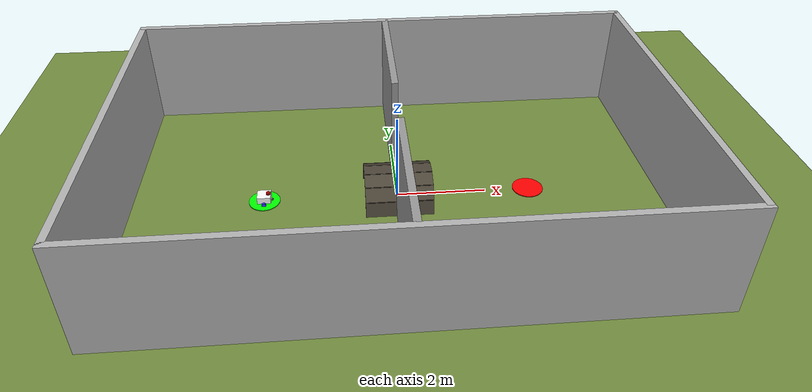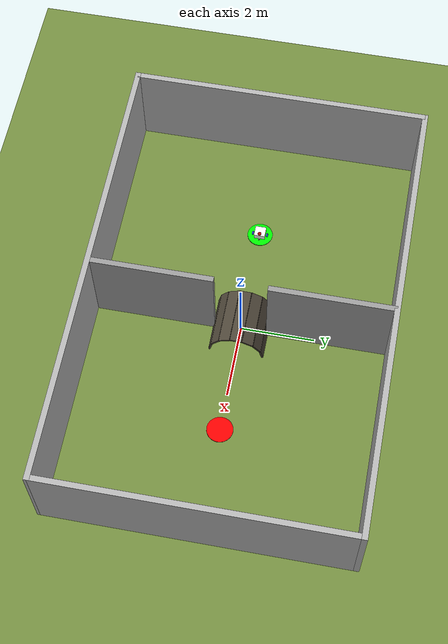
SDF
<sdf version="1.6">
 <world name="tunnel_test">
  <physics name="4ms" type="ignored">
   <max_step_size>0.004</max_step_size>
   <real_time_factor>1.0</real_time_factor>
  </physics>
  <plugin filename="ignition-gazebo-physics-system" name="gz::sim::systems::Physics"/>
  <plugin filename="ignition-gazebo-scene-broadcaster-system" name="gz::sim::systems::SceneBroadcaster"/>
  <plugin filename="ignition-gazebo-user-commands-system" name="gz::sim::systems::UserCommands"/>
  <plugin filename="ignition-gazebo-sensors-system" name="gz::sim::systems::Sensors">
   <render_engine>ogre2</render_engine>
  </plugin>
  <light type="directional" name="sun">
   <pose>0 0 500 0 0 0</pose>
   <diffuse>0.8 0.8 0.8 1</diffuse>
   <specular>0.2 0.2 0.2 1</specular>
   <attenuation>
    <range>1000</range>
    <constant>0.9</constant>
    <linear>0.01</linear>
    <quadratic>0.001</quadratic>
   </attenuation>
   <direction>-0.5 0.1 -0.9</direction>
  </light>
  <model name="ground_plane">
   <static>true</static>
   <link name="link">
    <collision name="collision">
     <geometry><plane><normal>0 0 1</normal><size>100 100</size></plane></geometry>
    </collision>
    <visual name="visual">
     <geometry><plane><normal>0 0 1</normal><size>100 100</size></plane></geometry>
     <material>
      <ambient>0.33 0.42 0.18 1</ambient>
      <diffuse>0.45 0.55 0.25 1</diffuse>
      <specular>0.1 0.1 0.1 1</specular>
     </material>
    </visual>
   </link>
  </model>
  <model name="tunnel_room">
   <static>true</static>
   <link name="wall_north">
    <pose>0 4 1.25 0 0 0</pose>
    <collision name="collision"><geometry><box><size>12.15 0.15 2.5</size></box></geometry></collision>
    <visual name="visual">
     <geometry><box><size>12.15 0.15 2.5</size></box></geometry>
     <material>
      <ambient>0.7 0.7 0.7 1</ambient>
      <diffuse>0.7 0.7 0.7 1</diffuse>
      <specular>0.2 0.2 0.2 1</specular>
     </material>
    </visual>
   </link>
   <link name="wall_south">
    <pose>0 -4 1.25 0 0 0</pose>
    <collision name="collision"><geometry><box><size>12.15 0.15 2.5</size></box></geometry></collision>
    <visual name="visual">
     <geometry><box><size>12.15 0.15 2.5</size></box></geometry>
     <material>
      <ambient>0.7 0.7 0.7 1</ambient>
      <diffuse>0.7 0.7 0.7 1</diffuse>
      <specular>0.2 0.2 0.2 1</specular>
     </material>
    </visual>
   </link>
   <link name="wall_east">
    <pose>6 0 1.25 0 0 1.5708</pose>
    <collision name="collision"><geometry><box><size>8 0.15 2.5</size></box></geometry></collision>
    <visual name="visual">
     <geometry><box><size>8 0.15 2.5</size></box></geometry>
     <material>
      <ambient>0.7 0.7 0.7 1</ambient>
      <diffuse>0.7 0.7 0.7 1</diffuse>
      <specular>0.2 0.2 0.2 1</specular>
     </material>
    </visual>
   </link>
   <link name="wall_west">
    <pose>-6 0 1.25 0 0 1.5708</pose>
    <collision name="collision"><geometry><box><size>8 0.15 2.5</size></box></geometry></collision>
    <visual name="visual">
     <geometry><box><size>8 0.15 2.5</size></box></geometry>
     <material>
      <ambient>0.7 0.7 0.7 1</ambient>
      <diffuse>0.7 0.7 0.7 1</diffuse>
      <specular>0.2 0.2 0.2 1</specular>
     </material>
    </visual>
   </link>
   <link name="partition_north">
    <pose>0 2.35 1.25 0 0 1.5708</pose>
    <collision name="collision"><geometry><box><size>3.3 0.15 2.5</size></box></geometry></collision>
    <visual name="visual">
     <geometry><box><size>3.3 0.15 2.5</size></box></geometry>
     <material>
      <ambient>0.6 0.6 0.6 1</ambient>
      <diffuse>0.6 0.6 0.6 1</diffuse>
      <specular>0.2 0.2 0.2 1</specular>
     </material>
    </visual>
   </link>
   <link name="partition_south">
    <pose>0 -2.35 1.25 0 0 1.5708</pose>
    <collision name="collision"><geometry><box><size>3.3 0.15 2.5</size></box></geometry></collision>
    <visual name="visual">
     <geometry><box><size>3.3 0.15 2.5</size></box></geometry>
     <material>
      <ambient>0.6 0.6 0.6 1</ambient>
      <diffuse>0.6 0.6 0.6 1</diffuse>
      <specular>0.2 0.2 0.2 1</specular>
     </material>
    </visual>
   </link>
  </model>
  <model name="tunnel">
   <static>true</static>
   <link name="arch_segment_0">
    <pose>0 0.6824 0.1558 -1.34640 0 0</pose>
    <collision name="collision"><geometry><box><size>1.5 0.349 0.05</size></box></geometry></collision>
    <visual name="visual">
     <geometry><box><size>1.5 0.349 0.05</size></box></geometry>
     <material>
      <ambient>0.25 0.22 0.18 1</ambient>
      <diffuse>0.3 0.27 0.22 1</diffuse>
      <specular>0.1 0.1 0.1 1</specular>
     </material>
    </visual>
   </link>
   <link name="arch_segment_1">
    <pose>0 0.5473 0.4364 -0.89760 0 0</pose>
    <collision name="collision"><geometry><box><size>1.5 0.349 0.05</size></box></geometry></collision>
    <visual name="visual">
     <geometry><box><size>1.5 0.349 0.05</size></box></geometry>
     <material>
      <ambient>0.25 0.22 0.18 1</ambient>
      <diffuse>0.3 0.27 0.22 1</diffuse>
      <specular>0.1 0.1 0.1 1</specular>
     </material>
    </visual>
   </link>
   <link name="arch_segment_2">
    <pose>0 0.3037 0.6307 -0.44880 0 0</pose>
    <collision name="collision"><geometry><box><size>1.5 0.349 0.05</size></box></geometry></collision>
    <visual name="visual">
     <geometry><box><size>1.5 0.349 0.05</size></box></geometry>
     <material>
      <ambient>0.25 0.22 0.18 1</ambient>
      <diffuse>0.3 0.27 0.22 1</diffuse>
      <specular>0.1 0.1 0.1 1</specular>
     </material>
    </visual>
   </link>
   <link name="arch_segment_3">
    <pose>0 0 0.7 0 0 0</pose>
    <collision name="collision"><geometry><box><size>1.5 0.349 0.05</size></box></geometry></collision>
    <visual name="visual">
     <geometry><box><size>1.5 0.349 0.05</size></box></geometry>
     <material>
      <ambient>0.25 0.22 0.18 1</ambient>
      <diffuse>0.3 0.27 0.22 1</diffuse>
      <specular>0.1 0.1 0.1 1</specular>
     </material>
    </visual>
   </link>
   <link name="arch_segment_4">
    <pose>0 -0.3037 0.6307 0.44880 0 0</pose>
    <collision name="collision"><geometry><box><size>1.5 0.349 0.05</size></box></geometry></collision>
    <visual name="visual">
     <geometry><box><size>1.5 0.349 0.05</size></box></geometry>
     <material>
      <ambient>0.25 0.22 0.18 1</ambient>
      <diffuse>0.3 0.27 0.22 1</diffuse>
      <specular>0.1 0.1 0.1 1</specular>
     </material>
    </visual>
   </link>
   <link name="arch_segment_5">
    <pose>0 -0.5473 0.4364 0.89760 0 0</pose>
    <collision name="collision"><geometry><box><size>1.5 0.349 0.05</size></box></geometry></collision>
    <visual name="visual">
     <geometry><box><size>1.5 0.349 0.05</size></box></geometry>
     <material>
      <ambient>0.25 0.22 0.18 1</ambient>
      <diffuse>0.3 0.27 0.22 1</diffuse>
      <specular>0.1 0.1 0.1 1</specular>
     </material>
    </visual>
   </link>
   <link name="arch_segment_6">
    <pose>0 -0.6824 0.1558 1.34640 0 0</pose>
    <collision name="collision"><geometry><box><size>1.5 0.349 0.05</size></box></geometry></collision>
    <visual name="visual">
     <geometry><box><size>1.5 0.349 0.05</size></box></geometry>
     <material>
      <ambient>0.25 0.22 0.18 1</ambient>
      <diffuse>0.3 0.27 0.22 1</diffuse>
      <specular>0.1 0.1 0.1 1</specular>
     </material>
    </visual>
   </link>
  </model>
  <model name="start_marker">
   <static>true</static>
   <pose>-3.0 0.0 0.01 0 0 0</pose>
   <link name="link">
    <visual name="visual">
     <geometry><cylinder><radius>0.35</radius><length>0.02</length></cylinder></geometry>
     <material><ambient>0 1 0 0.9</ambient><diffuse>0 1 0 0.9</diffuse><emissive>0 0.6 0 1</emissive></material>
    </visual>
   </link>
  </model>
  <model name="goal_marker">
   <static>true</static>
   <pose>3.0 0.0 0.01 0 0 0</pose>
   <link name="link">
    <visual name="visual">
     <geometry><cylinder><radius>0.35</radius><length>0.02</length></cylinder></geometry>
     <material><ambient>1 0 0 0.9</ambient><diffuse>1 0 0 0.9</diffuse><emissive>0.6 0 0 1</emissive></material>
    </visual>
   </link>
  </model>
  <include>
   <name>nav_ugv</name>
   <uri>model://nav_ugv</uri>
   <pose>-3.0 0.0 0.0 0 0 0</pose>
   <plugin filename="ignition-gazebo-diff-drive-system" name="gz::sim::systems::DiffDrive">
    <left_joint>left_wheel_joint</left_joint>
    <left_joint>rear_left_wheel_joint</left_joint>
    <right_joint>right_wheel_joint</right_joint>
    <right_joint>rear_right_wheel_joint</right_joint>
    <wheel_separation>0.49</wheel_separation>
    <wheel_radius>0.098</wheel_radius>
    <topic>cmd_vel</topic>
    <odom_topic>odometry</odom_topic>
    <frame_id>nav_ugv/wheel_odom</frame_id>
    <child_frame_id>nav_ugv/wheel_odom_base</child_frame_id>
    <odom_publish_frequency>30</odom_publish_frequency>
   </plugin>
   <plugin filename="ignition-gazebo-odometry-publisher-system" name="gz::sim::systems::OdometryPublisher">
    <dimensions>2</dimensions>
    <odom_frame>nav_ugv/odom</odom_frame>
    <robot_base_frame>nav_ugv/base_link</robot_base_frame>
    <odom_publish_frequency>30</odom_publish_frequency>
   </plugin>
  </include>
  <model name="overhead_overview_camera">
   <static>true</static>
   <pose>0 0 7.65 0 1.5707963 1.5707963</pose>
   <link name="link">
    <sensor name="room_overview_camera" type="camera">
     <always_on>true</always_on>
     <update_rate>15</update_rate>
     <visualize>true</visualize>
     <topic>/room_overhead/image</topic>
     <camera>
      <horizontal_fov>1.45</horizontal_fov>
      <image><width>640</width><height>480</height></image>
      <clip><near>0.1</near><far>100</far></clip>
     </camera>
    </sensor>
   </link>
  </model>
 </world>
</sdf>

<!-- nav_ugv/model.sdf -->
<sdf version="1.6">
  <model name="nav_ugv">
    <link name="base_link">
      <!-- Chassis center sits at wheel_radius + chassis_z/2 = 0.05 + 0.075
           = 0.125m above the ground - just tall enough that the box's
           bottom face clears the wheels' contact patch. -->
      <pose>0 0 0.125 0 0 0</pose>
      <inertial>
        <mass>1.5</mass>
        <inertia>
          <ixx>0.0138</ixx>
          <ixy>0</ixy>
          <ixz>0</ixz>
          <iyy>0.0138</iyy>
          <iyz>0</iyz>
          <izz>0.0225</izz>
        </inertia>
      </inertial>
      <visual name="chassis_visual">
        <geometry>
          <box>
            <size>0.3 0.3 0.15</size>
          </box>
        </geometry>
        <material>
          <ambient>1 1 1 1</ambient>
          <diffuse>1 1 1 1</diffuse>
          <specular>0.3 0.3 0.3 1</specular>
        </material>
      </visual>
      <collision name="chassis_collision">
        <geometry>
          <box>
            <size>0.3 0.3 0.15</size>
          </box>
        </geometry>
      </collision>

      <visual name="lidar_visual">
        <pose>0.1 0 0.095 0 0 0</pose>
        <geometry>
          <cylinder>
            <radius>0.05</radius>
            <length>0.04</length>
          </cylinder>
        </geometry>
        <material>
          <ambient>0.6 0 0 1</ambient>
          <diffuse>0.6 0 0 1</diffuse>
        </material>
      </visual>
      <sensor name="lidar" type="gpu_lidar">
        <pose>0.1 0 0.095 0 0 0</pose>
        <topic>nav_ugv/scan</topic>
        <update_rate>10</update_rate>
        <always_on>true</always_on>
        <visualize>false</visualize>
        <lidar>
          <scan>
            <horizontal>
              <samples>360</samples>
              <resolution>1</resolution>
              <min_angle>-3.14159</min_angle>
              <max_angle>3.14159</max_angle>
            </horizontal>
            <vertical>
              <samples>1</samples>
              <resolution>1</resolution>
              <min_angle>0</min_angle>
              <max_angle>0</max_angle>
            </vertical>
          </scan>
          <range>
            <min>0.3</min>
            <max>12.0</max>
            <resolution>0.01</resolution>
          </range>
        </lidar>
      </sensor>
    </link>

    <link name="left_wheel">
      <pose>0 0.2 0.05 -1.5708 0 0</pose>
      <inertial>
        <mass>0.2</mass>
        <inertia>
          <ixx>0.00013</ixx>
          <ixy>0</ixy>
          <ixz>0</ixz>
          <iyy>0.00013</iyy>
          <iyz>0</iyz>
          <izz>0.00025</izz>
        </inertia>
      </inertial>
      <visual name="visual">
        <geometry>
          <cylinder>
            <radius>0.05</radius>
            <length>0.04</length>
          </cylinder>
        </geometry>
        <material>
          <ambient>0.2 0.2 1 1</ambient>
          <diffuse>0.2 0.2 1 1</diffuse>
        </material>
      </visual>
      <collision name="collision">
        <geometry>
          <sphere>
            <radius>0.05</radius>
          </sphere>
        </geometry>
      </collision>
    </link>

    <link name="right_wheel">
      <pose>0 -0.2 0.05 -1.5708 0 0</pose>
      <inertial>
        <mass>0.2</mass>
        <inertia>
          <ixx>0.00013</ixx>
          <ixy>0</ixy>
          <ixz>0</ixz>
          <iyy>0.00013</iyy>
          <iyz>0</iyz>
          <izz>0.00025</izz>
        </inertia>
      </inertial>
      <visual name="visual">
        <geometry>
          <cylinder>
            <radius>0.05</radius>
            <length>0.04</length>
          </cylinder>
        </geometry>
        <material>
          <ambient>0.2 0.2 1 1</ambient>
          <diffuse>0.2 0.2 1 1</diffuse>
        </material>
      </visual>
      <collision name="collision">
        <geometry>
          <sphere>
            <radius>0.05</radius>
          </sphere>
        </geometry>
      </collision>
    </link>

    <link name="caster_wheel">
      <pose>-0.13 0 0.03 0 0 0</pose>
      <inertial>
        <mass>0.1</mass>
        <inertia>
          <ixx>0.000036</ixx>
          <ixy>0</ixy>
          <ixz>0</ixz>
          <iyy>0.000036</iyy>
          <iyz>0</iyz>
          <izz>0.000036</izz>
        </inertia>
      </inertial>
      <visual name="visual">
        <geometry>
          <sphere>
            <radius>0.03</radius>
          </sphere>
        </geometry>
        <material>
          <ambient>0.1 0.1 0.1 1</ambient>
          <diffuse>0.1 0.1 0.1 1</diffuse>
        </material>
      </visual>
      <collision name="collision">
        <geometry>
          <sphere>
            <radius>0.03</radius>
          </sphere>
        </geometry>
        <surface>
          <friction>
            <ode>
              <mu>0.001</mu>
              <mu2>0.001</mu2>
            </ode>
          </friction>
        </surface>
      </collision>
    </link>

    <link name="front_caster_wheel">
      <pose>0.13 0 0.03 0 0 0</pose>
      <inertial>
        <mass>0.1</mass>
        <inertia>
          <ixx>0.000036</ixx>
          <ixy>0</ixy>
          <ixz>0</ixz>
          <iyy>0.000036</iyy>
          <iyz>0</iyz>
          <izz>0.000036</izz>
        </inertia>
      </inertial>
      <visual name="visual">
        <geometry>
          <sphere>
            <radius>0.03</radius>
          </sphere>
        </geometry>
        <material>
          <ambient>0.1 0.1 0.1 1</ambient>
          <diffuse>0.1 0.1 0.1 1</diffuse>
        </material>
      </visual>
      <collision name="collision">
        <geometry>
          <sphere>
            <radius>0.03</radius>
          </sphere>
        </geometry>
        <surface>
          <friction>
            <ode>
              <mu>0.001</mu>
              <mu2>0.001</mu2>
            </ode>
          </friction>
        </surface>
      </collision>
    </link>

    <joint name="left_wheel_joint" type="revolute">
      <parent>base_link</parent>
      <child>left_wheel</child>
      <axis>
        <xyz>0 0 1</xyz>
        <limit>
          <lower>-1.79769e+308</lower>
          <upper>1.79769e+308</upper>
        </limit>
      </axis>
    </joint>

    <joint name="right_wheel_joint" type="revolute">
      <parent>base_link</parent>
      <child>right_wheel</child>
      <axis>
        <xyz>0 0 1</xyz>
        <limit>
          <lower>-1.79769e+308</lower>
          <upper>1.79769e+308</upper>
        </limit>
      </axis>
    </joint>

    <joint name="front_caster_wheel_joint" type="ball">
      <parent>base_link</parent>
      <child>front_caster_wheel</child>
    </joint>

    <joint name="caster_wheel_joint" type="ball">
      <parent>base_link</parent>
      <child>caster_wheel</child>
    </joint>

    <link name="front_camera_link">
      <pose>0.18 0 0.05 0 0.6 0</pose>
      <visual name="front_camera_visual">
        <geometry>
          <box>
            <size>0.03 0.05 0.03</size>
          </box>
        </geometry>
        <material>
          <ambient>0.05 0.05 0.05 1</ambient>
          <diffuse>0.05 0.05 0.05 1</diffuse>
        </material>
      </visual>
      <sensor name="front_camera" type="rgbd_camera">
        <pose>0 0 0 0 0 0</pose>
        <always_on>true</always_on>
        <update_rate>10</update_rate>
        <visualize>true</visualize>
        <topic>nav_ugv/front_camera</topic>
        <camera>
          <horizontal_fov>1.047</horizontal_fov>
          <image>
            <width>320</width>
            <height>240</height>
          </image>
          <clip>
            <near>0.1</near>
            <far>8.0</far>
          </clip>
        </camera>
      </sensor>
    </link>
    <joint name="front_camera_joint" type="fixed">
      <parent>base_link</parent>
      <child>front_camera_link</child>
    </joint>

    <link name="video_camera_link">
      <pose>0.1 0 0.22 0 0.15 0</pose>
      <inertial>
        <mass>0.02</mass>
        <inertia>
          <ixx>0.000005</ixx>
          <iyy>0.000005</iyy>
          <izz>0.000005</izz>
          <ixy>0</ixy>
          <ixz>0</ixz>
          <iyz>0</iyz>
        </inertia>
      </inertial>
      <visual name="video_camera_visual">
        <geometry>
          <box>
            <size>0.03 0.05 0.03</size>
          </box>
        </geometry>
        <material>
          <ambient>0.05 0.05 0.05 1</ambient>
          <diffuse>0.05 0.05 0.05 1</diffuse>
        </material>
      </visual>
      <sensor name="video_camera" type="camera">
        <pose>0 0 0 0 0 0</pose>
        <always_on>true</always_on>
        <update_rate>10</update_rate>
        <visualize>true</visualize>
        <topic>nav_ugv/video_camera</topic>
        <camera>
          <horizontal_fov>1.3</horizontal_fov>
          <image>
            <width>320</width>
            <height>240</height>
          </image>
          <clip>
            <near>0.1</near>
            <far>15.0</far>
          </clip>
        </camera>
      </sensor>
    </link>
    <joint name="video_camera_joint" type="fixed">
      <parent>base_link</parent>
      <child>video_camera_link</child>
    </joint>
  </model>
</sdf>
